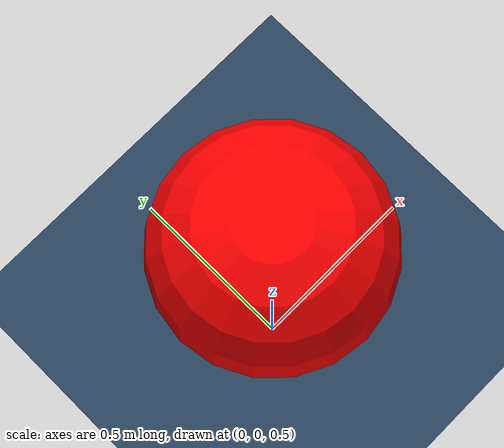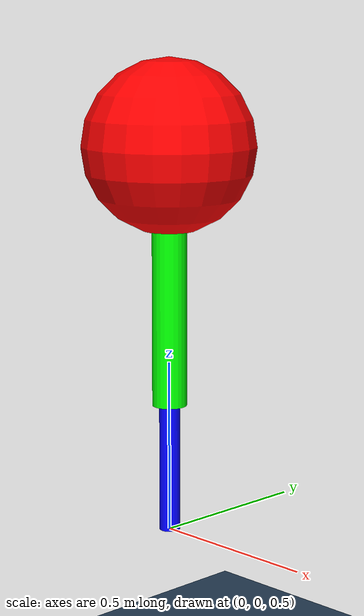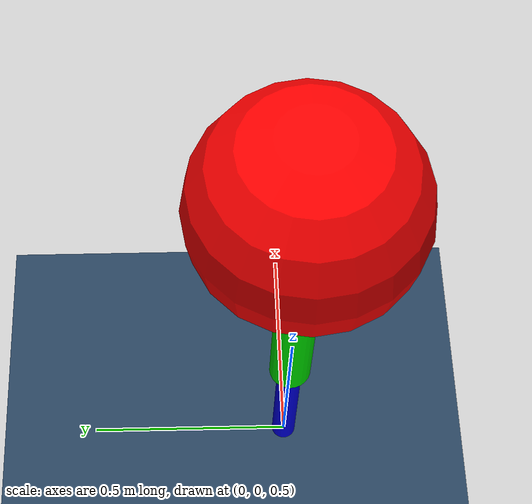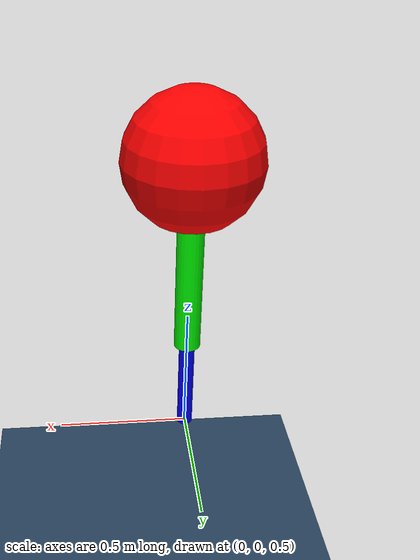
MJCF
<mujoco model="Hoper">
    <include file="./shared.xml"></include>

    <worldbody>
        <body name="lower_leg" pos="0 0 0.5" childclass="body">
            <freejoint name="root" />
            <geom name="lower_leg" type="cylinder" fromto="0 0 0 0 0 0.75" size="0.03"
                rgba="0.0 0.0 1.0 1.0" />
            <body name="upper_leg" pos="0 0 0.375">
                <geom name="upper_leg" type="cylinder" fromto="0 0 0 0 0 0.75" size="0.05"
                    rgba="0.0 1.0 0.0 1.0" />
                <joint name="slider" type="slide" range="-0.25 0.25" />
                <body name="head" pos="0 0 0.75">
                    <geom name="head" type="sphere" size="0.25" rgba="1.0 0.0 0.0 1.0" />
                </body>
            </body>
        </body>
    </worldbody>

    <actuator>
        <motor name="slider" joint="slider" gear="2000" />
    </actuator>
</mujoco>

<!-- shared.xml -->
<mujoco>
    <option timestep="0.005" />

    <asset>
        <texture type="skybox" builtin="gradient" rgb1=".3 .5 .7" rgb2="0 0 0" width="512"
            height="512" />
        <texture name="body" type="cube" builtin="flat" mark="cross" width="127" height="1278"
            rgb1="0.8 0.6 0.4" rgb2="0.8 0.6 0.4" markrgb="1 1 1" random="0.01" />
        <material name="body" texture="body" texuniform="true" rgba="0.8 0.6 .4 1" />
        <texture name="grid" type="2d" builtin="checker" width="512" height="512" rgb1=".1 .2 .3"
            rgb2=".2 .3 .4" />
        <material name="grid" texture="grid" texrepeat="1 1" texuniform="true" reflectance=".2" />
    </asset>

    <default>
        <motor ctrlrange="-1 1" ctrllimited="true" />
        <default class="body">
            <geom condim="1" friction=".7" solimp=".9 .99 .003" solref=".015 1" material="body" />
            <joint damping=".02" stiffness=".1" armature=".01" solimplimit="0 .99 .01" />
        </default>
    </default>

    <visual>
        <map force="0.1" zfar="30" />
        <rgba haze="0.15 0.25 0.35 1" />
        <quality shadowsize="4096" />
        <global offwidth="800" offheight="800" />
    </visual>

    <worldbody>
        <geom name="floor" size="0 0 .05" type="plane" material="grid" condim="3" />
        <light name="worldlight" directional="true" ambient="0.2 0.2 0.2" diffuse="0.8 0.8 0.8"
            specular="0.3 0.3 0.3" castshadow="false" pos="0 0 4" dir="0 0 -90"></light>
    </worldbody>
</mujoco>
